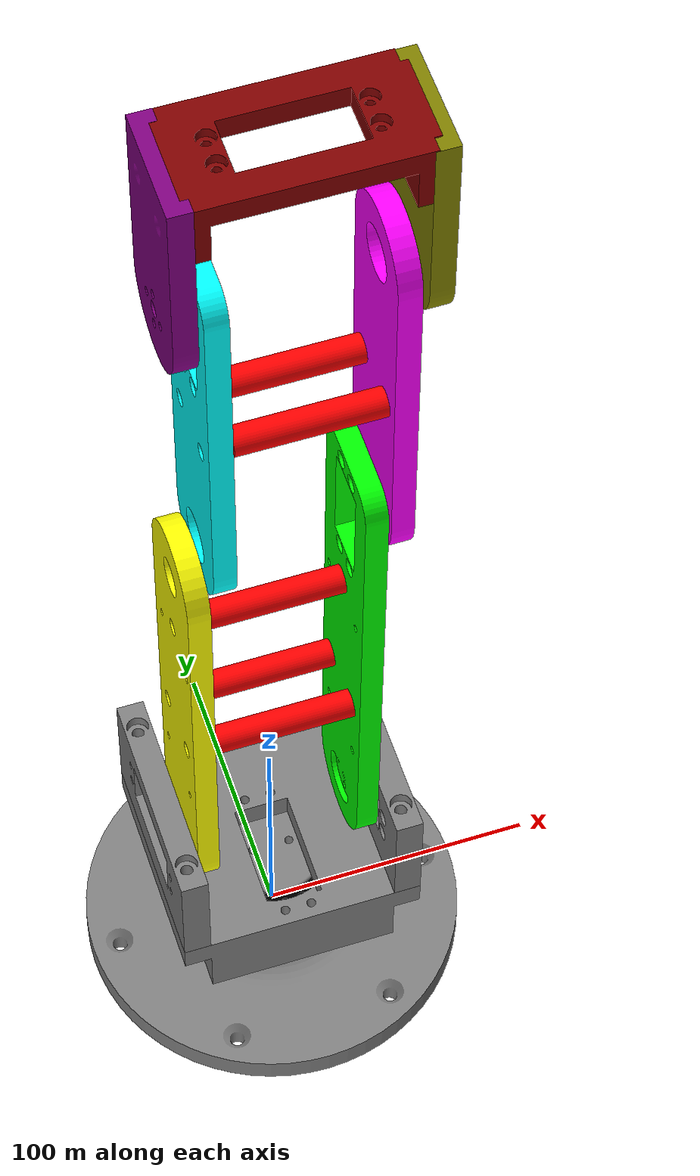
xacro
<?xml version="1.0"?>
<robot name="jb2a" xmlns:xacro="http://ros.org/wiki/xacro">
  <xacro:property name="pi" value="3.1415"/>

  <!-- Materials -->

  <material name="black">
    <color rgba="0 0 0 1"/>
  </material>

  <material name="white">
    <color rgba="1 1 1 1"/>
  </material>

  <material name="gray">
    <color rgba="0.5 0.5 0.5 1"/>
  </material>

  <material name="blue">
    <color rgba="0 0 1 1"/>
  </material>

  <material name="blue_light">
    <color rgba="0 0 0.5 1"/>
  </material>

  <material name="red">
    <color rgba="1 0 0 1"/>
  </material>

  <material name="red_light">
    <color rgba="0.5 0 0 1"/>
  </material>

  <material name="green">
    <color rgba="0 1 0 1"/>
  </material>

  <material name="green_light">
    <color rgba="0 0.5 0 1"/>
  </material>

  <material name="cyan">
    <color rgba="1 1 0 1"/>
  </material>

  <material name="cyan_light">
    <color rgba="0.5 0.5 0 1"/>
  </material>

  <material name="turcoise">
    <color rgba="0 1 1 1"/>
  </material>

  <material name="turcoise_light">
    <color rgba="0 0.5 0.5 1"/>
  </material>

  <material name="pink">
    <color rgba="1 0 1 1"/>
  </material>

  <material name="pink_light">
    <color rgba="0.5 0 0.5 1"/>
  </material>

  <!-- Base -->
  <link name="base_link">
    <visual>
      <geometry>
        <mesh filename="package://jb2a_description/meshes/base.stl"/>
      </geometry>
      <material name="gray"/>
      <origin rpy="0 0 0" xyz="0 0 0"/>
    </visual>
  </link>

  <link name="ball_bearings1">
    <visual>
      <geometry>
        <mesh filename="package://jb2a_description/meshes/bearings.stl"/>
      </geometry>
      <material name="black"/>
      <origin rpy="0 0 0" xyz="0 0 0"/>
    </visual>
  </link>

  <joint name="base_bearings_joint" type="fixed">
    <parent link="base_link"/>
    <child link="ball_bearings1"/>
    <origin rpy="0 0 0" xyz="0 0 27"/>
  </joint>

  <link name="ball_bearings2">
    <visual>
      <geometry>
        <mesh filename="package://jb2a_description/meshes/bearings.stl"/>
      </geometry>
      <material name="black"/>
      <origin rpy="0 0 0" xyz="0 0 0"/>
    </visual>
  </link>

  <joint name="base_bearings2_joint" type="fixed">
    <parent link="base_link"/>
    <child link="ball_bearings2"/>
    <origin rpy="0 0 0" xyz="0 0 34.5"/>
  </joint>

  <!-- rotational ensemble -->
  <link name="piece100">
    <visual>
      <geometry>
        <mesh filename="package://jb2a_description/meshes/Piece100.stl"/>
      </geometry>
      <material name="gray"/>
      <origin rpy="${pi/2} 0 0" xyz="0 0 0"/>
    </visual>
  </link>

  <joint name="base_piece100_joint" type="revolute">
    <parent link="base_link"/>
    <child link="piece100"/>
    <origin rpy="0 0 0" xyz="0 0 36"/>
    <axis xyz="0 0 1"/>
    <limit effort="1000.0" lower="${-pi/2}" upper="${pi/2}" velocity="0.5"/>
  </joint>

  <link name="piece11">
    <visual>
      <geometry>
        <mesh filename="package://jb2a_description/meshes/Piece11.stl"/>
      </geometry>
      <material name="gray"/>
      <origin rpy="${pi/2} 0 0" xyz="-40 1.25 35.5"/>
    </visual>
  </link>

  <joint name="piece100_piece11_joint" type="fixed">
    <parent link="piece100"/>
    <child link="piece11"/>
    <origin rpy="0 0 0" xyz="0 0 0"/>
  </joint>

  <link name="piece11sym">
    <visual>
      <geometry>
        <mesh filename="package://jb2a_description/meshes/Piece11sym.stl"/>
      </geometry>
      <material name="gray"/>
      <origin rpy="${pi/2} 0 0" xyz="40 1.25 35.5"/>
    </visual>
  </link>

  <joint name="piece100_piece11sym_joint" type="fixed">
    <parent link="piece100"/>
    <child link="piece11sym"/>
    <origin rpy="0 0 0" xyz="0 0 0"/>
  </joint>

  <!-- Arm1 -->
  <link name="arm1-piece12">
    <visual>
      <geometry>
        <mesh filename="package://jb2a_description/meshes/arm1-Piece12.stl"/>
      </geometry>
      <material name="green"/>
      <origin rpy="-${pi/2} ${pi/2} 0" xyz="-89.25 -1 0.5"/>
    </visual>
  </link>

  <joint name="piece11_arm1-piece12_joint" type="revolute">
    <parent link="piece11"/>
    <child link="arm1-piece12"/>
    <origin rpy="0 ${pi/2} 0" xyz="30 0 38"/>
    <axis xyz="0 0 1"/>
    <limit effort="1000.0" lower="${-pi/2}" upper="${pi/2}" velocity="0.5"/>
  </joint>

  <link name="arm1-piece15">
    <visual>
      <geometry>
        <mesh filename="package://jb2a_description/meshes/arm1-Piece15.stl"/>
      </geometry>
      <material name="cyan"/>
      <origin rpy="-${pi/2} ${pi/2} 0" xyz="-79.25 -0.7 0.5"/>
    </visual>
  </link>

  <joint name="piece11sym_arm1-piece15_joint" type="revolute">
    <parent link="piece11sym"/>
    <child link="arm1-piece15"/>
    <origin rpy="0 ${pi/2} 0" xyz="-30 0 38"/>
    <axis xyz="0 0 1"/>
    <limit effort="1000.0" lower="${-pi/2}" upper="${pi/2}" velocity="0.5"/>
  </joint>

  <link name="arm1-piece13-1">
    <visual>
      <geometry>
        <mesh filename="package://jb2a_description/meshes/arm1-Piece13.stl"/>
      </geometry>
      <material name="red"/>
      <origin rpy="0 ${pi/2} 0" xyz="-68 -11 -29"/>
    </visual>
  </link>

  <joint name="arm1-piece12_arm1-piece13-1_joint" type="fixed">
    <parent link="arm1-piece12"/>
    <child link="arm1-piece13-1"/>
    <origin rpy="0 0 0" xyz="0 0 0"/>
  </joint>

  <link name="arm1-piece13-2">
    <visual>
      <geometry>
        <mesh filename="package://jb2a_description/meshes/arm1-Piece13.stl"/>
      </geometry>
      <material name="red"/>
      <origin rpy="0 ${pi/2} 0" xyz="-68 11 -29"/>
    </visual>
  </link>

  <joint name="arm1-piece12_arm1-piece13-2_joint" type="fixed">
    <parent link="arm1-piece12"/>
    <child link="arm1-piece13-2"/>
    <origin rpy="0 0 0" xyz="0 0 0"/>
  </joint>

  <link name="arm1-piece13-3">
    <visual>
      <geometry>
        <mesh filename="package://jb2a_description/meshes/arm1-Piece13.stl"/>
      </geometry>
      <material name="red"/>
      <origin rpy="0 ${pi/2} 0" xyz="-130 0 -29"/>
    </visual>
  </link>

  <joint name="arm1-piece12_arm1-piece13-3_joint" type="fixed">
    <parent link="arm1-piece12"/>
    <child link="arm1-piece13-3"/>
    <origin rpy="0 0 0" xyz="0 0 0"/>
  </joint>

  <!-- Arm2 -->
  <link name="arm2-piece16">
    <visual>
      <geometry>
        <mesh filename="package://jb2a_description/meshes/arm2-Piece16.stl"/>
      </geometry>
      <material name="pink"/>
      <origin rpy="0 -${pi/2} ${pi/2}" xyz="-59 0 0"/>
    </visual>
  </link>

  <joint name="arm1-piece12_arm2-piece16_joint" type="revolute">
    <parent link="arm1-piece12"/>
    <child link="arm2-piece16"/>
    <origin rpy="0 0 0" xyz="-180 0 10"/>
    <axis xyz="0 0 1"/>
    <limit effort="1000.0" lower="${-pi/2}" upper="${pi/2}" velocity="0.5"/>
  </joint>

  <link name="arm2-piece17-1">
    <visual>
      <geometry>
        <mesh filename="package://jb2a_description/meshes/arm2-Piece17.stl"/>
      </geometry>
      <material name="red"/>
      <origin rpy="0 ${pi/2} 0" xyz="-60 -11 -29"/>
    </visual>
  </link>

  <joint name="arm2-piece16_arm2-piece17-1_joint" type="fixed">
    <parent link="arm2-piece16"/>
    <child link="arm2-piece17-1"/>
    <origin rpy="0 0 0" xyz="0 0 0"/>
  </joint>

  <link name="arm2-piece17-2">
    <visual>
      <geometry>
        <mesh filename="package://jb2a_description/meshes/arm2-Piece17.stl"/>
      </geometry>
      <material name="red"/>
      <origin rpy="0 ${pi/2} 0" xyz="-60 11 -29"/>
    </visual>
  </link>

  <joint name="arm2-piece16_arm2-piece17-2_joint" type="fixed">
    <parent link="arm2-piece16"/>
    <child link="arm2-piece17-2"/>
    <origin rpy="0 0 0" xyz="0 0 0"/>
  </joint>

  <link name="arm2-piece14">
    <visual>
      <geometry>
        <mesh filename="package://jb2a_description/meshes/arm2-Piece14.stl"/>
      </geometry>
      <material name="turcoise"/>
      <origin rpy="0 -${pi/2} ${pi/2}" xyz="-59 0 0"/>
    </visual>
  </link>

  <joint name="arm2-piece17_arm2-piece14_joint" type="fixed">
    <parent link="arm2-piece17-1"/>
    <child link="arm2-piece14"/>
    <origin rpy="0 0 0" xyz="0 0 -60"/>
  </joint>

  <!-- Arm3 -->
  <link name="arm3-piece17">
    <visual>
      <geometry>
        <mesh filename="package://jb2a_description/meshes/arm3-Piece17.stl"/>
      </geometry>
      <material name="pink_light"/>
      <origin rpy="-${pi/2} -${pi/2} 0" xyz="-25 0 0"/>
    </visual>
  </link>

  <joint name="arm2-piece14_arm3-piece17_joint" type="revolute">
    <parent link="arm2-piece14"/>
    <child link="arm3-piece17"/>
    <origin rpy="0 0 0" xyz="-120 0 -10"/>
    <axis xyz="0 0 1"/>
    <limit effort="1000.0" lower="${-pi/2}" upper="${pi/2}" velocity="0.5"/>
  </joint>

  <link name="arm3-piece18">
    <visual>
      <geometry>
        <mesh filename="package://jb2a_description/meshes/arm3-Piece18.stl"/>
      </geometry>
      <material name="cyan_light"/>
      <origin rpy="-${pi/2} -${pi/2} 0" xyz="-25 0 0"/>
    </visual>
  </link>

  <joint name="arm3-piece17_arm3-piece18_joint" type="fixed">
    <parent link="arm3-piece17"/>
    <child link="arm3-piece18"/>
    <origin rpy="0 0 0" xyz="0 0 80"/>
  </joint>

  <link name="arm3-piece19">
    <visual>
      <geometry>
        <mesh filename="package://jb2a_description/meshes/arm3-Piece19.stl"/>
      </geometry>
      <material name="red_light"/>
      <origin rpy="0 0 0" xyz="0 0 0"/>
    </visual>
  </link>

  <joint name="arm3-piece18_arm3-piece19_joint" type="fixed">
    <parent link="arm3-piece18"/>
    <child link="arm3-piece19"/>
    <origin rpy="${pi/2} ${pi/2} 0" xyz="-57.5 0 -40"/>
  </joint>

</robot>
